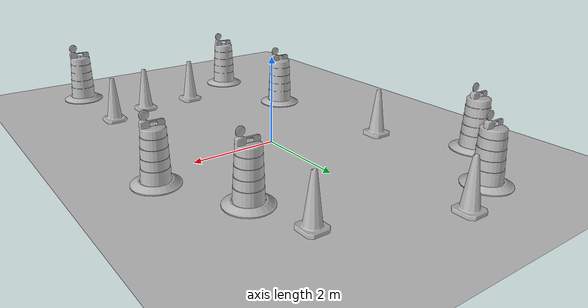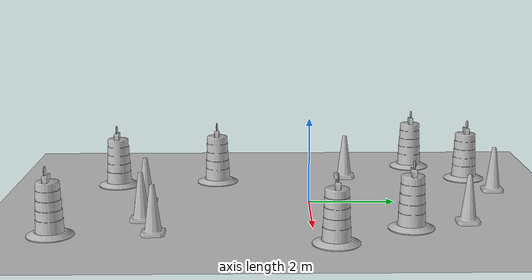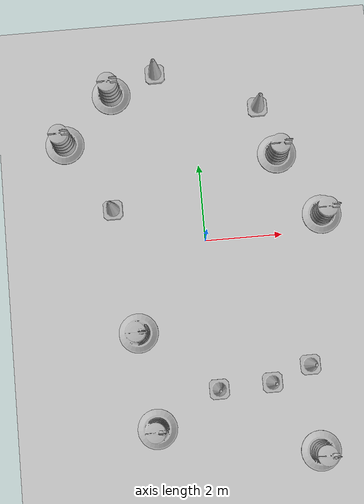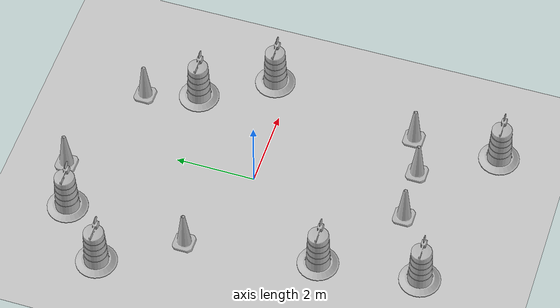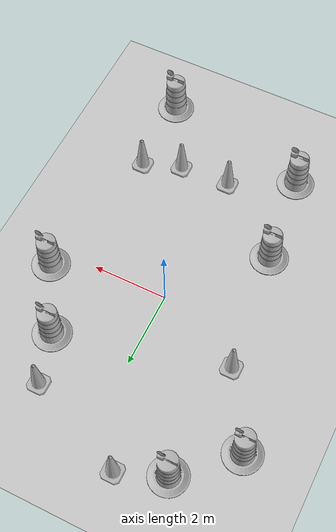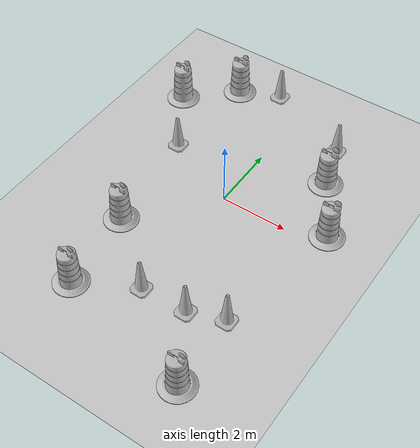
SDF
<sdf version="1.7">
 <world name="default">
  <light name="sun" type="directional">
   <pose>0 0 10 0 -0 0</pose>
   <diffuse>0.8 0.8 0.8 1</diffuse>
   <specular>0.2 0.2 0.2 1</specular>
   <attenuation>
    <range>1000</range>
    <constant>0.9</constant>
    <linear>0.01</linear>
    <quadratic>0.001</quadratic>
   </attenuation>
   <direction>-0.5 0.1 -0.9</direction>
   <spot><inner_angle>0</inner_angle><outer_angle>0</outer_angle><falloff>0</falloff></spot>
  </light>
  <model name="ground_plane">
   <static>1</static>
   <link name="link">
    <collision name="collision">
     <geometry><plane><normal>0 0 1</normal><size>100 100</size></plane></geometry>
     <surface>
      <contact><collide_bitmask>65535</collide_bitmask></contact>
      <friction><ode><mu>100</mu><mu2>50</mu2></ode></friction>
     </surface>
    </collision>
    <visual name="visual">
     <cast_shadows>0</cast_shadows>
     <geometry><plane><normal>0 0 1</normal><size>100 100</size></plane></geometry>
     <material>
      <script><uri>file://media/materials/scripts/gazebo.material</uri><name>Gazebo/Grey</name></script>
     </material>
    </visual>
   </link>
  </model>
  <gravity>0 0 -9.8</gravity>
  <magnetic_field>6e-06 2.3e-05 -4.2e-05</magnetic_field>
  <atmosphere type="adiabatic"/>
  <physics type="ode">
   <max_step_size>0.001</max_step_size>
   <real_time_factor>1</real_time_factor>
   <real_time_update_rate>1000</real_time_update_rate>
  </physics>
  <scene><ambient>0.4 0.4 0.4 1</ambient><background>0.7 0.7 0.7 1</background><shadows>1</shadows></scene>
  <audio><device>default</device></audio>
  <spherical_coordinates>
   <surface_model>EARTH_WGS84</surface_model>
   <latitude_deg>0</latitude_deg>
   <longitude_deg>0</longitude_deg>
   <elevation>0</elevation>
   <heading_deg>0</heading_deg>
  </spherical_coordinates>
  <model name="Construction Barrel">
   <link name="link">
    <inertial>
     <pose>0 0 0.4 0 -0 0</pose>
     <mass>500</mass>
     <inertia><ixx>51.2096</ixx><iyy>51.2096</iyy><izz>25</izz><ixy>0</ixy><ixz>0</ixz><iyz>0</iyz></inertia>
    </inertial>
    <collision name="collision">
     <geometry><mesh><uri>model://construction_barrel/meshes/construction_barrel.dae</uri></mesh></geometry>
    </collision>
    <visual name="visual">
     <geometry><mesh><uri>model://construction_barrel/meshes/construction_barrel.dae</uri></mesh></geometry>
    </visual>
   </link>
   <pose>2.4349 -5.57928 1e-06 3e-06 2e-06 -2.1e-05</pose>
  </model>
  <model name="Construction Barrel_0">
   <link name="link">
    <inertial>
     <pose>0 0 0.4 0 -0 0</pose>
     <mass>500</mass>
     <inertia><ixx>51.2096</ixx><iyy>51.2096</iyy><izz>25</izz><ixy>0</ixy><ixz>0</ixz><iyz>0</iyz></inertia>
    </inertial>
    <collision name="collision">
     <geometry><mesh><uri>model://construction_barrel/meshes/construction_barrel.dae</uri></mesh></geometry>
    </collision>
    <visual name="visual">
     <geometry><mesh><uri>model://construction_barrel/meshes/construction_barrel.dae</uri></mesh></geometry>
    </visual>
   </link>
   <pose>-1.6328 -4.68557 1e-06 3e-06 2e-06 -2e-05</pose>
  </model>
  <model name="Construction Cone">
   <link name="link">
    <collision name="collision">
     <geometry>
      <mesh><scale>10 10 10</scale><uri>model://construction_cone/meshes/construction_cone.dae</uri></mesh>
     </geometry>
    </collision>
    <visual name="visual">
     <geometry>
      <mesh><scale>10 10 10</scale><uri>model://construction_cone/meshes/construction_cone.dae</uri></mesh>
     </geometry>
    </visual>
    <inertial>
     <inertia><ixx>1</ixx><ixy>0</ixy><ixz>0</ixz><iyy>1</iyy><iyz>0</iyz><izz>1</izz></inertia>
     <mass>1</mass>
    </inertial>
   </link>
   <pose>1.68288 3.43576 -4e-06 4e-06 -0 0</pose>
  </model>
  <model name="Construction Cone_0">
   <link name="link">
    <collision name="collision">
     <geometry>
      <mesh><scale>10 10 10</scale><uri>model://construction_cone/meshes/construction_cone.dae</uri></mesh>
     </geometry>
    </collision>
    <visual name="visual">
     <geometry>
      <mesh><scale>10 10 10</scale><uri>model://construction_cone/meshes/construction_cone.dae</uri></mesh>
     </geometry>
    </visual>
    <inertial>
     <inertia><ixx>1</ixx><ixy>0</ixy><ixz>0</ixz><iyy>1</iyy><iyz>0</iyz><izz>1</izz></inertia>
     <mass>1</mass>
    </inertial>
   </link>
   <pose>0.01031 -3.82496 -0 0 -0 0</pose>
  </model>
  <model name="Construction Barrel_1">
   <link name="link">
    <inertial>
     <pose>0 0 0.4 0 -0 0</pose>
     <mass>500</mass>
     <inertia><ixx>51.2096</ixx><iyy>51.2096</iyy><izz>25</izz><ixy>0</ixy><ixz>0</ixz><iyz>0</iyz></inertia>
    </inertial>
    <collision name="collision">
     <geometry><mesh><uri>model://construction_barrel/meshes/construction_barrel.dae</uri></mesh></geometry>
    </collision>
    <visual name="visual">
     <geometry><mesh><uri>model://construction_barrel/meshes/construction_barrel.dae</uri></mesh></geometry>
    </visual>
   </link>
   <pose>-3.45482 2.84987 -1e-06 3e-06 7e-06 -1.5e-05</pose>
  </model>
  <model name="Construction Barrel_2">
   <link name="link">
    <inertial>
     <pose>0 0 0.4 0 -0 0</pose>
     <mass>500</mass>
     <inertia><ixx>51.2096</ixx><iyy>51.2096</iyy><izz>25</izz><ixy>0</ixy><ixz>0</ixz><iyz>0</iyz></inertia>
    </inertial>
    <collision name="collision">
     <geometry><mesh><uri>model://construction_barrel/meshes/construction_barrel.dae</uri></mesh></geometry>
    </collision>
    <visual name="visual">
     <geometry><mesh><uri>model://construction_barrel/meshes/construction_barrel.dae</uri></mesh></geometry>
    </visual>
   </link>
   <pose>3.07733 0.43674 0 0 0 -1.5e-05</pose>
  </model>
  <model name="Construction Cone_1">
   <link name="link">
    <collision name="collision">
     <geometry>
      <mesh><scale>10 10 10</scale><uri>model://construction_cone/meshes/construction_cone.dae</uri></mesh>
     </geometry>
    </collision>
    <visual name="visual">
     <geometry>
      <mesh><scale>10 10 10</scale><uri>model://construction_cone/meshes/construction_cone.dae</uri></mesh>
     </geometry>
    </visual>
    <inertial>
     <inertia><ixx>1</ixx><ixy>0</ixy><ixz>0</ixz><iyy>1</iyy><iyz>0</iyz><izz>1</izz></inertia>
     <mass>1</mass>
    </inertial>
   </link>
   <pose>-2.32668 1.01254 -0 0 -0 0</pose>
  </model>
  <model name="Construction Cone_2">
   <link name="link">
    <collision name="collision">
     <geometry>
      <mesh><scale>10 10 10</scale><uri>model://construction_cone/meshes/construction_cone.dae</uri></mesh>
     </geometry>
    </collision>
    <visual name="visual">
     <geometry>
      <mesh><scale>10 10 10</scale><uri>model://construction_cone/meshes/construction_cone.dae</uri></mesh>
     </geometry>
    </visual>
    <inertial>
     <inertia><ixx>1</ixx><ixy>0</ixy><ixz>0</ixz><iyy>1</iyy><iyz>0</iyz><izz>1</izz></inertia>
     <mass>1</mass>
    </inertial>
   </link>
   <pose>-0.945834 4.56094 0 -0 -0 -0</pose>
  </model>
  <model name="Construction Cone_3">
   <link name="link">
    <collision name="collision">
     <geometry>
      <mesh><scale>10 10 10</scale><uri>model://construction_cone/meshes/construction_cone.dae</uri></mesh>
     </geometry>
    </collision>
    <visual name="visual">
     <geometry>
      <mesh><scale>10 10 10</scale><uri>model://construction_cone/meshes/construction_cone.dae</uri></mesh>
     </geometry>
    </visual>
    <inertial>
     <inertia><ixx>1</ixx><ixy>0</ixy><ixz>0</ixz><iyy>1</iyy><iyz>0</iyz><izz>1</izz></inertia>
     <mass>1</mass>
    </inertial>
   </link>
   <pose>2.38162 -3.40869 -0 0 -0 0</pose>
  </model>
  <model name="Construction Cone_4">
   <link name="link">
    <collision name="collision">
     <geometry>
      <mesh><scale>10 10 10</scale><uri>model://construction_cone/meshes/construction_cone.dae</uri></mesh>
     </geometry>
    </collision>
    <visual name="visual">
     <geometry>
      <mesh><scale>10 10 10</scale><uri>model://construction_cone/meshes/construction_cone.dae</uri></mesh>
     </geometry>
    </visual>
    <inertial>
     <inertia><ixx>1</ixx><ixy>0</ixy><ixz>0</ixz><iyy>1</iyy><iyz>0</iyz><izz>1</izz></inertia>
     <mass>1</mass>
    </inertial>
   </link>
   <pose>1.37595 -3.77093 -0 0 -1e-06 0</pose>
  </model>
  <model name="Construction Barrel_3">
   <link name="link">
    <inertial>
     <pose>0 0 0.4 0 -0 0</pose>
     <mass>500</mass>
     <inertia><ixx>51.2096</ixx><iyy>51.2096</iyy><izz>25</izz><ixy>0</ixy><ixz>0</ixz><iyz>0</iyz></inertia>
    </inertial>
    <collision name="collision">
     <geometry><mesh><uri>model://construction_barrel/meshes/construction_barrel.dae</uri></mesh></geometry>
    </collision>
    <visual name="visual">
     <geometry><mesh><uri>model://construction_barrel/meshes/construction_barrel.dae</uri></mesh></geometry>
    </visual>
   </link>
   <pose>-1.91799 -2.2328 1e-06 2e-06 3e-06 -6e-06</pose>
  </model>
  <model name="Construction Barrel_4">
   <link name="link">
    <inertial>
     <pose>0 0 0.4 0 -0 0</pose>
     <mass>500</mass>
     <inertia><ixx>51.2096</ixx><iyy>51.2096</iyy><izz>25</izz><ixy>0</ixy><ixz>0</ixz><iyz>0</iyz></inertia>
    </inertial>
    <collision name="collision">
     <geometry><mesh><uri>model://construction_barrel/meshes/construction_barrel.dae</uri></mesh></geometry>
    </collision>
    <visual name="visual">
     <geometry><mesh><uri>model://construction_barrel/meshes/construction_barrel.dae</uri></mesh></geometry>
    </visual>
   </link>
   <pose>2.06716 2.13044 0 0 0 -3e-06</pose>
  </model>
  <model name="Construction Barrel_5">
   <link name="link">
    <inertial>
     <pose>0 0 0.4 0 -0 0</pose>
     <mass>500</mass>
     <inertia><ixx>51.2096</ixx><iyy>51.2096</iyy><izz>25</izz><ixy>0</ixy><ixz>0</ixz><iyz>0</iyz></inertia>
    </inertial>
    <collision name="collision">
     <geometry><mesh><uri>model://construction_barrel/meshes/construction_barrel.dae</uri></mesh></geometry>
    </collision>
    <visual name="visual">
     <geometry><mesh><uri>model://construction_barrel/meshes/construction_barrel.dae</uri></mesh></geometry>
    </visual>
   </link>
   <pose>-2.14124 4.08242 -1e-06 3e-06 -2e-06 -2e-06</pose>
  </model>
 </world>
</sdf>
